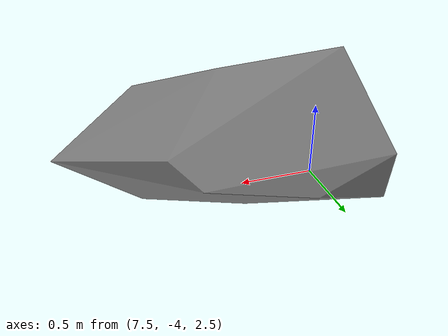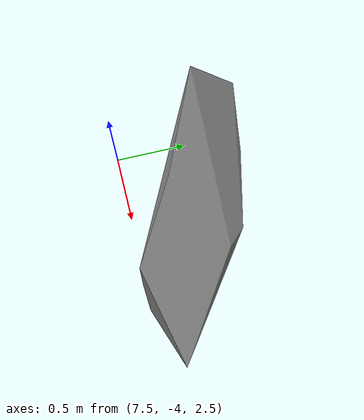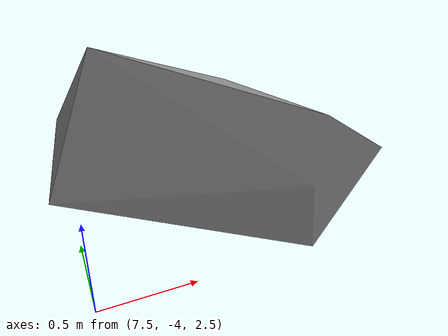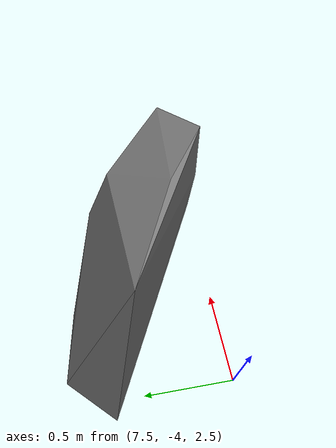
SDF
<sdf version="1.8">
 <model name="blue_mountains">
  <static>true</static>
  <link name="forest_20_19">
   <collision name="tree_36_trunk">
    <pose>8.064901 -3.934568 1.036897 0 0 -1.96331</pose>
    <geometry><cylinder><radius>0.05142228</radius><length>3.126861</length></cylinder></geometry>
   </collision>
   <collision name="plant_36_crown_0">
    <pose>8.072769 -3.915564 -0.5265334 0 0 -1.96331</pose>
    <geometry>
     <mesh>
      <uri>model://blue_mountains/meshes/canopy_5_0.dae</uri>
      <scale>0.2056891 0.2056891 0.2350291</scale>
     </mesh>
    </geometry>
   </collision>
   <collision name="plant_36_crown_1">
    <pose>8.072769 -3.915564 -0.5265334 0 0 -1.96331</pose>
    <geometry>
     <mesh>
      <uri>model://blue_mountains/meshes/canopy_5_1.dae</uri>
      <scale>0.2056891 0.2056891 0.2350291</scale>
     </mesh>
    </geometry>
   </collision>
   <collision name="tree_104_trunk">
    <pose>5.837503 -6.421388 1.121348 0 0 1.406154</pose>
    <geometry><cylinder><radius>0.05761126</radius><length>3.006669</length></cylinder></geometry>
   </collision>
   <collision name="plant_104_crown_0">
    <pose>5.833726 -6.44412 -0.3819864 0 0 1.406154</pose>
    <geometry>
     <mesh>
      <uri>model://blue_mountains/meshes/canopy_8_0.dae</uri>
      <scale>0.2304451 0.2304451 0.2237231</scale>
     </mesh>
    </geometry>
   </collision>
   <collision name="plant_104_crown_1">
    <pose>5.833726 -6.44412 -0.3819864 0 0 1.406154</pose>
    <geometry>
     <mesh>
      <uri>model://blue_mountains/meshes/canopy_8_1.dae</uri>
      <scale>0.2304451 0.2304451 0.2237231</scale>
     </mesh>
    </geometry>
   </collision>
   <collision name="tree_141_trunk">
    <pose>9.121021 -1.25642 1.169558 0 0 0.3491143</pose>
    <geometry><cylinder><radius>0.05565056</radius><length>3.4652</length></cylinder></geometry>
   </collision>
   <collision name="plant_141_crown_0">
    <pose>9.100103 -1.264034 -0.5630417 0 0 0.3491143</pose>
    <geometry>
     <mesh>
      <uri>model://blue_mountains/meshes/canopy_8_0.dae</uri>
      <scale>0.2226022 0.2226022 0.257842</scale>
     </mesh>
    </geometry>
   </collision>
   <collision name="plant_141_crown_1">
    <pose>9.100103 -1.264034 -0.5630417 0 0 0.3491143</pose>
    <geometry>
     <mesh>
      <uri>model://blue_mountains/meshes/canopy_8_1.dae</uri>
      <scale>0.2226022 0.2226022 0.257842</scale>
     </mesh>
    </geometry>
   </collision>
   <collision name="tree_250_trunk">
    <pose>0.3952031 -8.50123 1.704684 0 0 -3.111204</pose>
    <geometry><cylinder><radius>0.06084983</radius><length>3.948915</length></cylinder></geometry>
   </collision>
   <collision name="plant_250_crown_0">
    <pose>0.4195318 -8.50049 -0.269773 0 0 -3.111204</pose>
    <geometry>
     <mesh>
      <uri>model://blue_mountains/meshes/canopy_6_0.dae</uri>
      <scale>0.2433993 0.2433993 0.2910831</scale>
     </mesh>
    </geometry>
   </collision>
   <collision name="plant_250_crown_1">
    <pose>0.4195318 -8.50049 -0.269773 0 0 -3.111204</pose>
    <geometry>
     <mesh>
      <uri>model://blue_mountains/meshes/canopy_6_1.dae</uri>
      <scale>0.2433993 0.2433993 0.2910831</scale>
     </mesh>
    </geometry>
   </collision>
   <collision name="tree_297_trunk">
    <pose>6.044645 -8.184278 0.4515969 0 0 -2.15758</pose>
    <geometry><cylinder><radius>0.05283953</radius><length>2.655341</length></cylinder></geometry>
   </collision>
   <collision name="plant_297_crown_0">
    <pose>6.056348 -8.166677 -0.8760738 0 0 -2.15758</pose>
    <geometry>
     <mesh>
      <uri>model://blue_mountains/meshes/canopy_4_0.dae</uri>
      <scale>0.2113581 0.2113581 0.1978672</scale>
     </mesh>
    </geometry>
   </collision>
   <collision name="plant_297_crown_1">
    <pose>6.056348 -8.166677 -0.8760738 0 0 -2.15758</pose>
    <geometry>
     <mesh>
      <uri>model://blue_mountains/meshes/canopy_4_1.dae</uri>
      <scale>0.2113581 0.2113581 0.1978672</scale>
     </mesh>
    </geometry>
   </collision>
   <collision name="tree_403_trunk">
    <pose>9.347544 -6.610414 -0.03978779 0 0 -1.134761</pose>
    <geometry><cylinder><radius>0.06587769</radius><length>3.24739</length></cylinder></geometry>
   </collision>
   <collision name="plant_403_crown_0">
    <pose>9.336414 -6.586529 -1.663483 0 0 -1.134761</pose>
    <geometry>
     <mesh>
      <uri>model://blue_mountains/meshes/canopy_0_0.dae</uri>
      <scale>0.2635108 0.2635108 0.2394932</scale>
     </mesh>
    </geometry>
   </collision>
   <collision name="plant_403_crown_1">
    <pose>9.336414 -6.586529 -1.663483 0 0 -1.134761</pose>
    <geometry>
     <mesh>
      <uri>model://blue_mountains/meshes/canopy_0_1.dae</uri>
      <scale>0.2635108 0.2635108 0.2394932</scale>
     </mesh>
    </geometry>
   </collision>
   <collision name="tree_441_trunk">
    <pose>5.850234 -7.336158 0.7626462 0 0 -0.9736604</pose>
    <geometry><cylinder><radius>0.05517553</radius><length>2.704629</length></cylinder></geometry>
   </collision>
   <collision name="plant_441_crown_0">
    <pose>5.837825 -7.317907 -0.5896683 0 0 -0.9736604</pose>
    <geometry>
     <mesh>
      <uri>model://blue_mountains/meshes/canopy_4_0.dae</uri>
      <scale>0.2207021 0.2207021 0.2015399</scale>
     </mesh>
    </geometry>
   </collision>
   <collision name="plant_441_crown_1">
    <pose>5.837825 -7.317907 -0.5896683 0 0 -0.9736604</pose>
    <geometry>
     <mesh>
      <uri>model://blue_mountains/meshes/canopy_4_1.dae</uri>
      <scale>0.2207021 0.2207021 0.2015399</scale>
     </mesh>
    </geometry>
   </collision>
   <visual name="forest_visual">
    <geometry><mesh><uri>model://blue_mountains/meshes/forest_20_19.dae</uri></mesh></geometry>
    <cast_shadows>false</cast_shadows>
   </visual>
  </link>
 </model>
</sdf>
